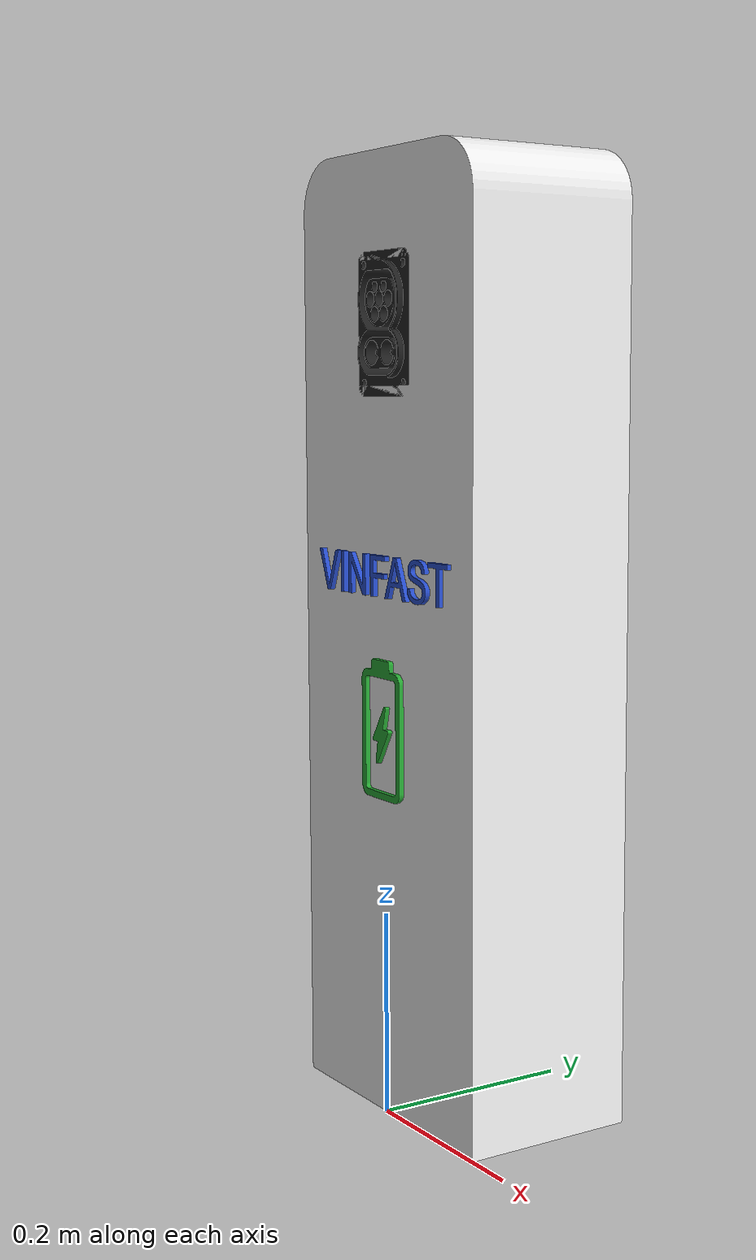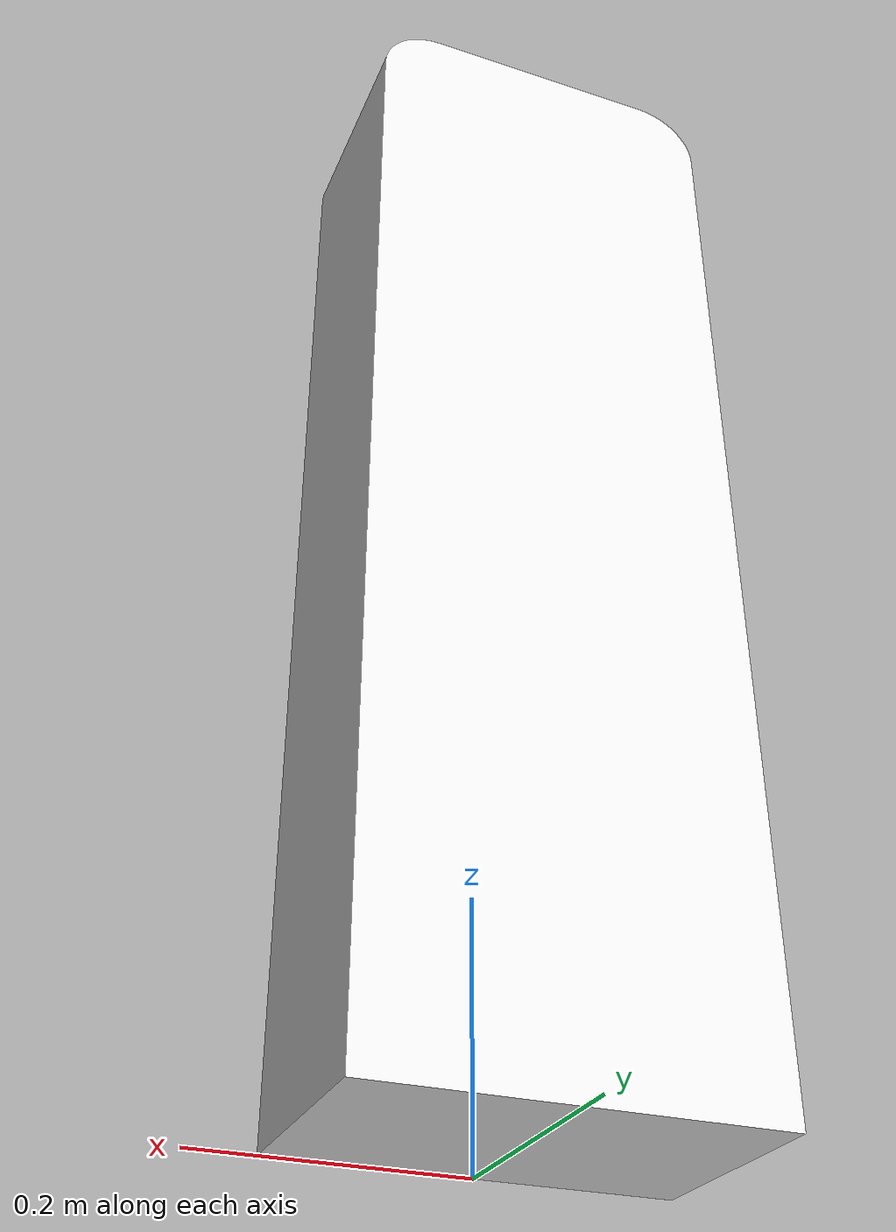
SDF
<?xml version="1.0" ?>
<sdf version="1.6">
  <model name="tram_sac_VF">
    <static>true</static>
    <link name="body_link">

      <visual name="visual_tru">
        <pose>0 0 0 0 0 0</pose>
        <geometry>
          <mesh>
            <uri>model://tram_sac_VF/meshes/tru.stl</uri>
            <scale>0.001 0.001 0.001</scale> </mesh>
        </geometry>
        <material>
          <script>
            <uri>file://media/materials/scripts/gazebo.material</uri>
            <name>Gazebo/White</name>
          </script>
        </material>
      </visual>

      <visual name="visual_cong_sac">
        <pose>0 0 0 0 0 0</pose>
        <geometry>
          <mesh>
            <uri>model://tram_sac_VF/meshes/cong_sac.stl</uri>
            <scale>0.001 0.001 0.001</scale>
          </mesh>
        </geometry>
        <material>
          <script>
            <uri>file://media/materials/scripts/gazebo.material</uri>
            <name>Gazebo/Black</name>
          </script>
        </material>
      </visual>

      <visual name="visual_logo">
        <pose>0 0 0 0 0 0</pose>
        <geometry>
          <mesh>
            <uri>model://tram_sac_VF/meshes/Logo_VF.stl</uri>
            <scale>0.001 0.001 0.001</scale>
          </mesh>
        </geometry>
        <material>
          <script>
            <uri>file://media/materials/scripts/gazebo.material</uri>
            <name>Gazebo/Blue</name>
          </script>
        </material>
      </visual>

      <visual name="visual_icon">
        <pose>0 0 0 0 0 0</pose>
        <geometry>
          <mesh>
            <uri>model://tram_sac_VF/meshes/icon.stl</uri>
            <scale>0.001 0.001 0.001</scale>
          </mesh>
        </geometry>
        <material>
          <script>
            <uri>file://media/materials/scripts/gazebo.material</uri>
            <name>Gazebo/Green</name>
          </script>
        </material>
      </visual>

      <collision name="collision_tru">
        <pose>0 0.1 0.45 0 0 0</pose>
        <geometry>
          <box>
            <size>0.32 0.15 0.92</size>
          </box>
        </geometry>
      </collision>

      <collision name="collision_cong_sac">
        <pose>0 0 0 0 0 0</pose>
        <geometry>
          <mesh>
            <uri>model://tram_sac_VF/meshes/cong_sac.stl</uri>
            <scale>0.001 0.001 0.001</scale>
          </mesh>
        </geometry>
        <max_contacts>10</max_contacts>
        <surface>
          <friction>
            <ode>
              <mu>1.0</mu>
              <mu2>1.0</mu2>
            </ode>
          </friction>
        </surface>
      </collision>

    </link>
  </model>
</sdf>
